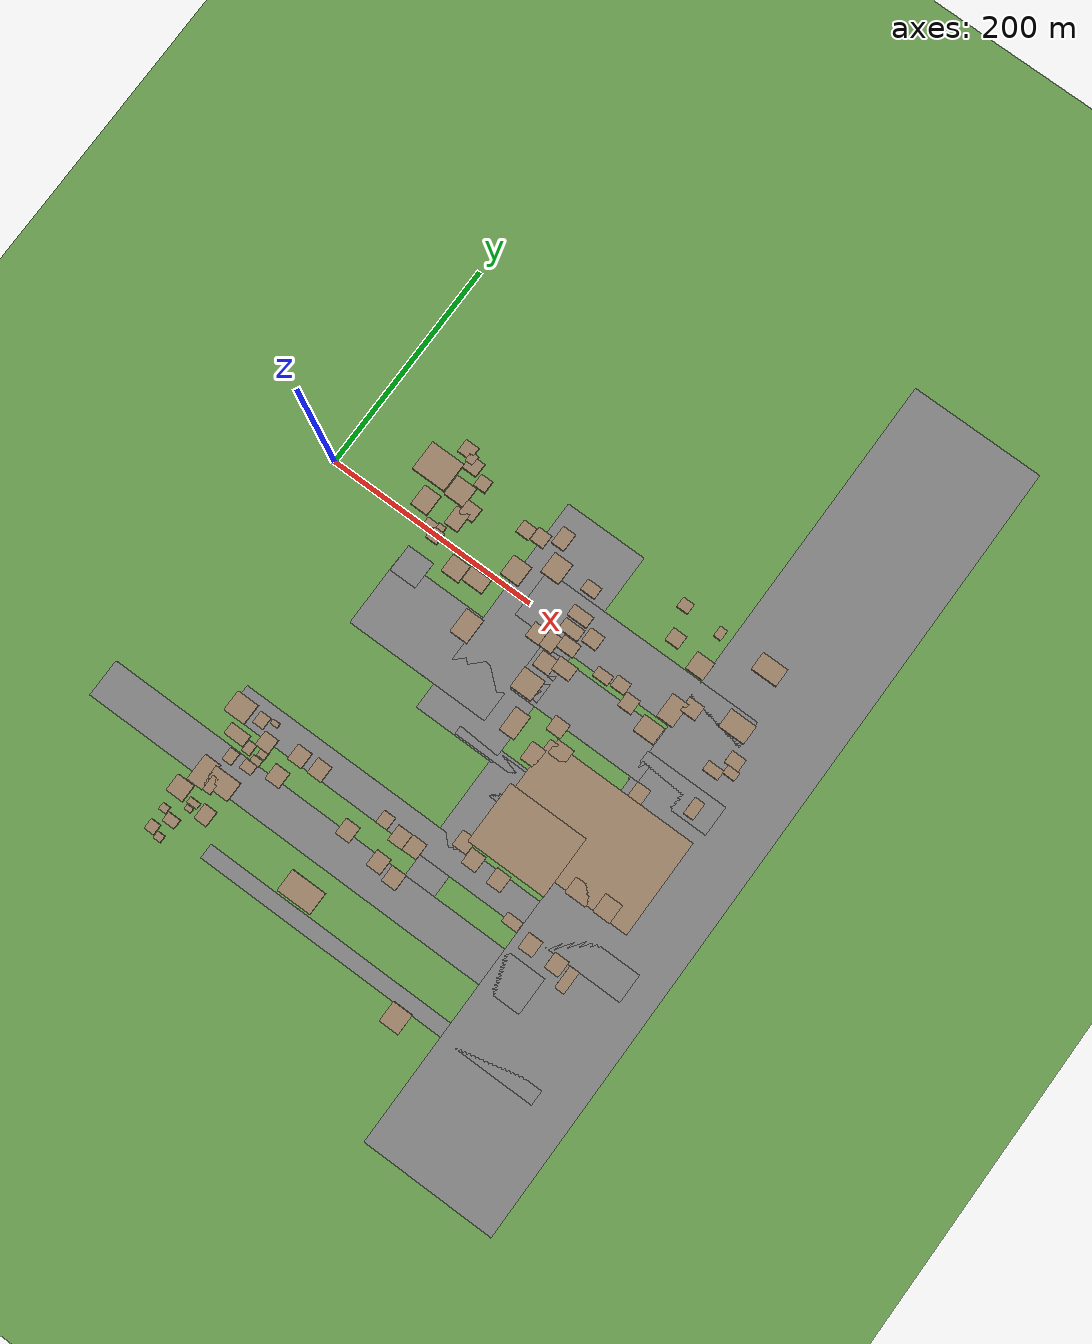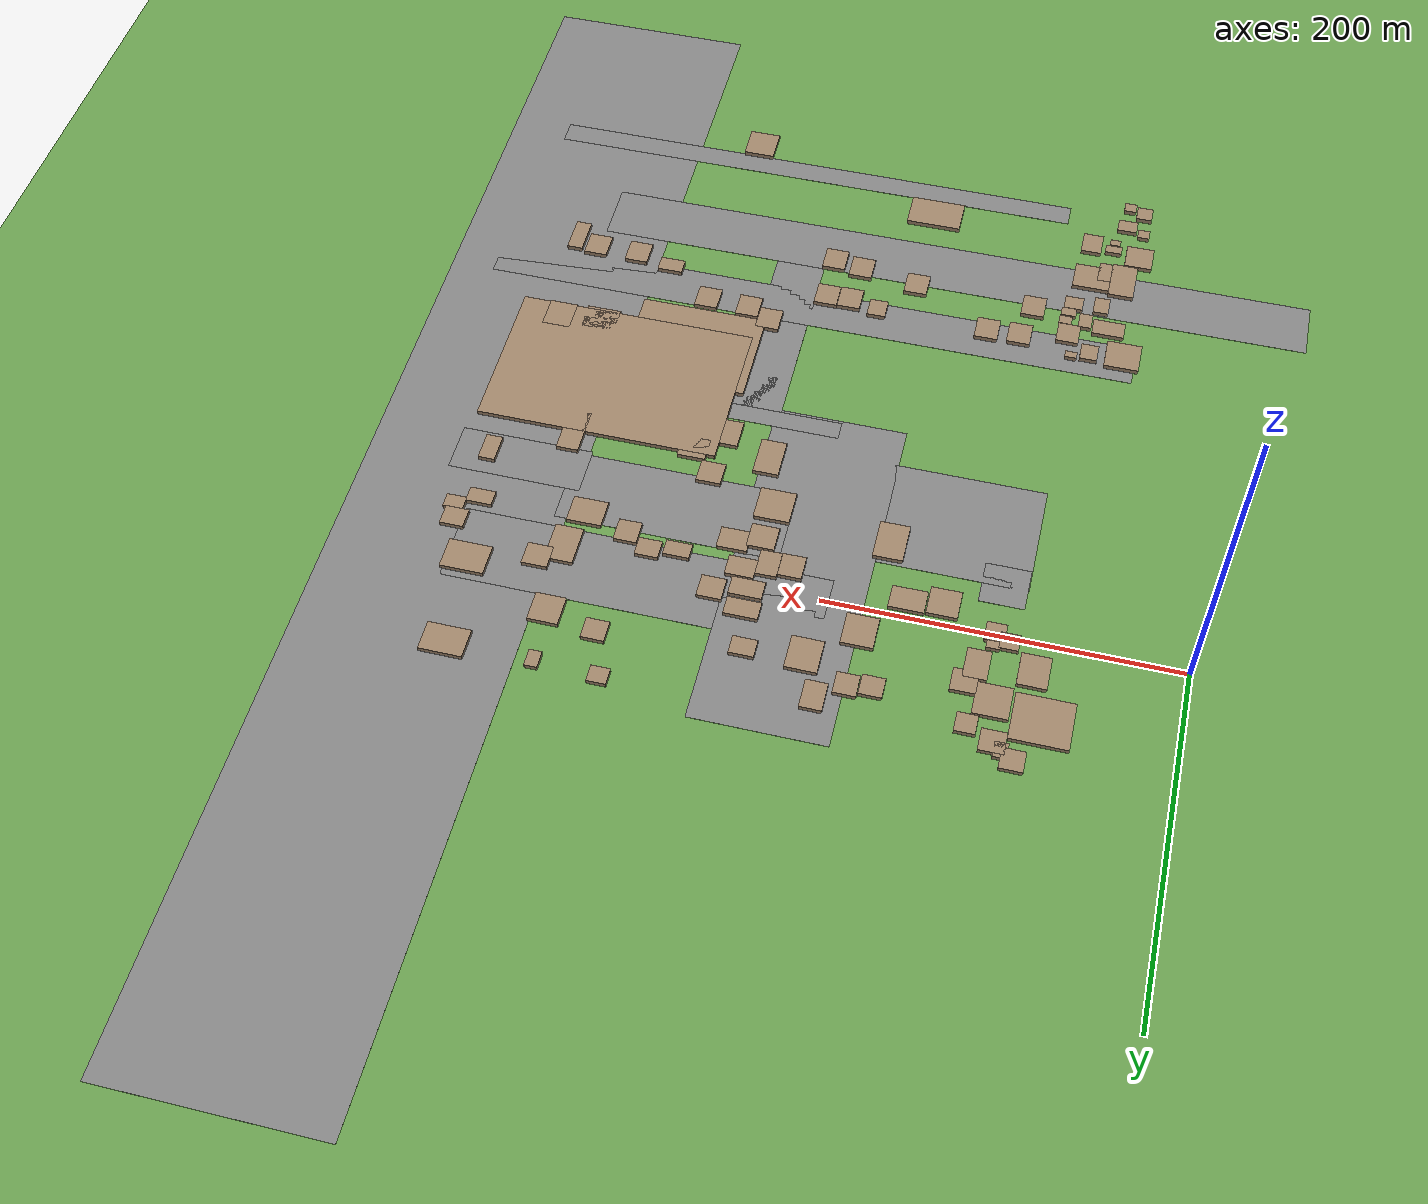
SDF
<sdf version="1.9">
 <world name="kimje_farmland">
  <model name="ground_plane">
   <static>true</static>
   <link name="link">
    <collision name="collision">
     <geometry><plane><normal>0 0 1</normal><size>2000 2000</size></plane></geometry>
    </collision>
    <visual name="visual">
     <geometry><plane><normal>0 0 1</normal><size>2000 2000</size></plane></geometry>
     <material><ambient>0.4 0.6 0.3 1</ambient><diffuse>0.4 0.6 0.3 1</diffuse></material>
    </visual>
   </link>
  </model>
  <model name="osm_10">
   <static>true</static>
   <pose>251.50 -203.29 0.040 0 0 0</pose>
   <link name="link">
    <collision name="collision"><geometry><box><size>393.94 26.91 0.080</size></box></geometry></collision>
    <visual name="visual">
     <geometry><box><size>393.94 26.91 0.080</size></box></geometry>
     <material><ambient>0.5 0.5 0.5 1</ambient><diffuse>0.5 0.5 0.5 1</diffuse></material>
    </visual>
   </link>
  </model>
  <model name="osm_42">
   <static>true</static>
   <pose>214.23 -18.59 0.040 0 0 0</pose>
   <link name="link">
    <collision name="collision"><geometry><box><size>76.90 208.64 0.080</size></box></geometry></collision>
    <visual name="visual">
     <geometry><box><size>76.90 208.64 0.080</size></box></geometry>
     <material><ambient>0.5 0.5 0.5 1</ambient><diffuse>0.5 0.5 0.5 1</diffuse></material>
    </visual>
   </link>
  </model>
  <model name="osm_45">
   <static>true</static>
   <pose>292.19 -43.22 0.040 0 0 0</pose>
   <link name="link">
    <collision name="collision"><geometry><box><size>128.96 45.24 0.080</size></box></geometry></collision>
    <visual name="visual">
     <geometry><box><size>128.96 45.24 0.080</size></box></geometry>
     <material><ambient>0.5 0.5 0.5 1</ambient><diffuse>0.5 0.5 0.5 1</diffuse></material>
    </visual>
   </link>
  </model>
  <model name="osm_47">
   <static>true</static>
   <pose>172.74 -254.29 0.040 0 0 0</pose>
   <link name="link">
    <collision name="collision"><geometry><box><size>433.24 34.90 0.080</size></box></geometry></collision>
    <visual name="visual">
     <geometry><box><size>433.24 34.90 0.080</size></box></geometry>
     <material><ambient>0.5 0.5 0.5 1</ambient><diffuse>0.5 0.5 0.5 1</diffuse></material>
    </visual>
   </link>
  </model>
  <model name="osm_50">
   <static>true</static>
   <pose>300.70 8.19 0.040 0 0 0</pose>
   <link name="link">
    <collision name="collision"><geometry><box><size>211.02 45.11 0.080</size></box></geometry></collision>
    <visual name="visual">
     <geometry><box><size>211.02 45.11 0.080</size></box></geometry>
     <material><ambient>0.5 0.5 0.5 1</ambient><diffuse>0.5 0.5 0.5 1</diffuse></material>
    </visual>
   </link>
  </model>
  <model name="osm_53">
   <static>true</static>
   <pose>274.34 -316.10 0.040 0 0 0</pose>
   <link name="link">
    <collision name="collision"><geometry><box><size>330.12 13.79 0.080</size></box></geometry></collision>
    <visual name="visual">
     <geometry><box><size>330.12 13.79 0.080</size></box></geometry>
     <material><ambient>0.5 0.5 0.5 1</ambient><diffuse>0.5 0.5 0.5 1</diffuse></material>
    </visual>
   </link>
  </model>
  <model name="osm_57">
   <static>true</static>
   <pose>264.60 -189.44 0.040 0 0 0</pose>
   <link name="link">
    <collision name="collision"><geometry><box><size>29.40 152.93 0.080</size></box></geometry></collision>
    <visual name="visual">
     <geometry><box><size>29.40 152.93 0.080</size></box></geometry>
     <material><ambient>0.5 0.5 0.5 1</ambient><diffuse>0.5 0.5 0.5 1</diffuse></material>
    </visual>
   </link>
  </model>
  <model name="osm_60">
   <static>true</static>
   <pose>158.74 -65.54 0.040 0 0 0</pose>
   <link name="link">
    <collision name="collision"><geometry><box><size>136.66 67.44 0.080</size></box></geometry></collision>
    <visual name="visual">
     <geometry><box><size>136.66 67.44 0.080</size></box></geometry>
     <material><ambient>0.5 0.5 0.5 1</ambient><diffuse>0.5 0.5 0.5 1</diffuse></material>
    </visual>
   </link>
  </model>
  <model name="osm_61">
   <static>true</static>
   <pose>266.02 -132.14 0.040 0 0 0</pose>
   <link name="link">
    <collision name="collision"><geometry><box><size>15.99 27.55 0.080</size></box></geometry></collision>
    <visual name="visual">
     <geometry><box><size>15.99 27.55 0.080</size></box></geometry>
     <material><ambient>0.5 0.5 0.5 1</ambient><diffuse>0.5 0.5 0.5 1</diffuse></material>
    </visual>
   </link>
  </model>
  <model name="osm_91">
   <static>true</static>
   <pose>412.07 -44.82 0.040 0 0 0</pose>
   <link name="link">
    <collision name="collision"><geometry><box><size>124.96 758.23 0.080</size></box></geometry></collision>
    <visual name="visual">
     <geometry><box><size>124.96 758.23 0.080</size></box></geometry>
     <material><ambient>0.5 0.5 0.5 1</ambient><diffuse>0.5 0.5 0.5 1</diffuse></material>
    </visual>
   </link>
  </model>
  <model name="osm_105">
   <static>true</static>
   <pose>103.67 -32.48 0.040 0 0 0</pose>
   <link name="link">
    <collision name="collision"><geometry><box><size>25.59 25.34 0.080</size></box></geometry></collision>
    <visual name="visual">
     <geometry><box><size>25.59 25.34 0.080</size></box></geometry>
     <material><ambient>0.5 0.5 0.5 1</ambient><diffuse>0.5 0.5 0.5 1</diffuse></material>
    </visual>
   </link>
  </model>
  <model name="osm_109">
   <static>true</static>
   <pose>387.00 -54.41 0.040 0 0 0</pose>
   <link name="link">
    <collision name="collision"><geometry><box><size>77.46 28.04 0.080</size></box></geometry></collision>
    <visual name="visual">
     <geometry><box><size>77.46 28.04 0.080</size></box></geometry>
     <material><ambient>0.5 0.5 0.5 1</ambient><diffuse>0.5 0.5 0.5 1</diffuse></material>
    </visual>
   </link>
  </model>
  <model name="osm_171">
   <static>true</static>
   <pose>310.52 -115.93 0.040 0 0 0</pose>
   <link name="link">
    <collision name="collision"><geometry><box><size>193.33 11.08 0.080</size></box></geometry></collision>
    <visual name="visual">
     <geometry><box><size>193.33 11.08 0.080</size></box></geometry>
     <material><ambient>0.5 0.5 0.5 1</ambient><diffuse>0.5 0.5 0.5 1</diffuse></material>
    </visual>
   </link>
  </model>
  <model name="osm_172">
   <static>true</static>
   <pose>350.24 -125.06 1.500 0 0 0</pose>
   <link name="link">
    <collision name="collision"><geometry><box><size>142.17 90.84 3.000</size></box></geometry></collision>
    <visual name="visual">
     <geometry><box><size>142.17 90.84 3.000</size></box></geometry>
     <material><ambient>0.6 0.5 0.4 1</ambient><diffuse>0.6 0.5 0.4 1</diffuse></material>
    </visual>
   </link>
  </model>
  <model name="osm_554">
   <static>true</static>
   <pose>82.91 72.96 1.500 0 0 0</pose>
   <link name="link">
    <collision name="collision"><geometry><box><size>13.02 12.17 3.000</size></box></geometry></collision>
    <visual name="visual">
     <geometry><box><size>13.02 12.17 3.000</size></box></geometry>
     <material><ambient>0.6 0.5 0.4 1</ambient><diffuse>0.6 0.5 0.4 1</diffuse></material>
    </visual>
   </link>
  </model>
  <model name="osm_555">
   <static>true</static>
   <pose>89.70 68.73 1.500 0 0 0</pose>
   <link name="link">
    <collision name="collision"><geometry><box><size>7.55 9.03 3.000</size></box></geometry></collision>
    <visual name="visual">
     <geometry><box><size>7.55 9.03 3.000</size></box></geometry>
     <material><ambient>0.6 0.5 0.4 1</ambient><diffuse>0.6 0.5 0.4 1</diffuse></material>
    </visual>
   </link>
  </model>
  <model name="osm_556">
   <static>true</static>
   <pose>94.56 64.64 1.500 0 0 0</pose>
   <link name="link">
    <collision name="collision"><geometry><box><size>13.83 12.95 3.000</size></box></geometry></collision>
    <visual name="visual">
     <geometry><box><size>13.83 12.95 3.000</size></box></geometry>
     <material><ambient>0.6 0.5 0.4 1</ambient><diffuse>0.6 0.5 0.4 1</diffuse></material>
    </visual>
   </link>
  </model>
  <model name="osm_557">
   <static>true</static>
   <pose>109.64 57.32 1.500 0 0 0</pose>
   <link name="link">
    <collision name="collision"><geometry><box><size>11.57 11.40 3.000</size></box></geometry></collision>
    <visual name="visual">
     <geometry><box><size>11.57 11.40 3.000</size></box></geometry>
     <material><ambient>0.6 0.5 0.4 1</ambient><diffuse>0.6 0.5 0.4 1</diffuse></material>
    </visual>
   </link>
  </model>
  <model name="osm_558">
   <static>true</static>
   <pose>98.45 41.10 1.500 0 0 0</pose>
   <link name="link">
    <collision name="collision"><geometry><box><size>19.57 19.19 3.000</size></box></geometry></collision>
    <visual name="visual">
     <geometry><box><size>19.57 19.19 3.000</size></box></geometry>
     <material><ambient>0.6 0.5 0.4 1</ambient><diffuse>0.6 0.5 0.4 1</diffuse></material>
    </visual>
   </link>
  </model>
  <model name="osm_559">
   <static>true</static>
   <pose>80.04 18.48 1.500 0 0 0</pose>
   <link name="link">
    <collision name="collision"><geometry><box><size>16.47 19.61 3.000</size></box></geometry></collision>
    <visual name="visual">
     <geometry><box><size>16.47 19.61 3.000</size></box></geometry>
     <material><ambient>0.6 0.5 0.4 1</ambient><diffuse>0.6 0.5 0.4 1</diffuse></material>
    </visual>
   </link>
  </model>
  <model name="osm_560">
   <static>true</static>
   <pose>95.38 3.55 1.500 0 0 0</pose>
   <link name="link">
    <collision name="collision"><geometry><box><size>10.64 9.94 3.000</size></box></geometry></collision>
    <visual name="visual">
     <geometry><box><size>10.64 9.94 3.000</size></box></geometry>
     <material><ambient>0.6 0.5 0.4 1</ambient><diffuse>0.6 0.5 0.4 1</diffuse></material>
    </visual>
   </link>
  </model>
  <model name="osm_561">
   <static>true</static>
   <pose>103.68 6.79 1.500 0 0 0</pose>
   <link name="link">
    <collision name="collision"><geometry><box><size>7.48 6.07 3.000</size></box></geometry></collision>
    <visual name="visual">
     <geometry><box><size>7.48 6.07 3.000</size></box></geometry>
     <material><ambient>0.6 0.5 0.4 1</ambient><diffuse>0.6 0.5 0.4 1</diffuse></material>
    </visual>
   </link>
  </model>
  <model name="osm_562">
   <static>true</static>
   <pose>103.71 -0.60 1.500 0 0 0</pose>
   <link name="link">
    <collision name="collision"><geometry><box><size>11.23 11.29 3.000</size></box></geometry></collision>
    <visual name="visual">
     <geometry><box><size>11.23 11.29 3.000</size></box></geometry>
     <material><ambient>0.6 0.5 0.4 1</ambient><diffuse>0.6 0.5 0.4 1</diffuse></material>
    </visual>
   </link>
  </model>
  <model name="osm_563">
   <static>true</static>
   <pose>114.88 32.65 1.500 0 0 0</pose>
   <link name="link">
    <collision name="collision"><geometry><box><size>14.10 13.49 3.000</size></box></geometry></collision>
    <visual name="visual">
     <geometry><box><size>14.10 13.49 3.000</size></box></geometry>
     <material><ambient>0.6 0.5 0.4 1</ambient><diffuse>0.6 0.5 0.4 1</diffuse></material>
    </visual>
   </link>
  </model>
  <model name="osm_564">
   <static>true</static>
   <pose>110.10 21.10 1.500 0 0 0</pose>
   <link name="link">
    <collision name="collision"><geometry><box><size>13.29 17.83 3.000</size></box></geometry></collision>
    <visual name="visual">
     <geometry><box><size>13.29 17.83 3.000</size></box></geometry>
     <material><ambient>0.6 0.5 0.4 1</ambient><diffuse>0.6 0.5 0.4 1</diffuse></material>
    </visual>
   </link>
  </model>
  <model name="osm_630">
   <static>true</static>
   <pose>62.04 -207.22 1.500 0 0 0</pose>
   <link name="link">
    <collision name="collision"><geometry><box><size>20.49 19.26 3.000</size></box></geometry></collision>
    <visual name="visual">
     <geometry><box><size>20.49 19.26 3.000</size></box></geometry>
     <material><ambient>0.6 0.5 0.4 1</ambient><diffuse>0.6 0.5 0.4 1</diffuse></material>
    </visual>
   </link>
  </model>
  <model name="osm_631">
   <static>true</static>
   <pose>81.88 -205.47 1.500 0 0 0</pose>
   <link name="link">
    <collision name="collision"><geometry><box><size>10.28 11.25 3.000</size></box></geometry></collision>
    <visual name="visual">
     <geometry><box><size>10.28 11.25 3.000</size></box></geometry>
     <material><ambient>0.6 0.5 0.4 1</ambient><diffuse>0.6 0.5 0.4 1</diffuse></material>
    </visual>
   </link>
  </model>
  <model name="osm_632">
   <static>true</static>
   <pose>92.22 -201.24 1.500 0 0 0</pose>
   <link name="link">
    <collision name="collision"><geometry><box><size>6.98 4.40 3.000</size></box></geometry></collision>
    <visual name="visual">
     <geometry><box><size>6.98 4.40 3.000</size></box></geometry>
     <material><ambient>0.6 0.5 0.4 1</ambient><diffuse>0.6 0.5 0.4 1</diffuse></material>
    </visual>
   </link>
  </model>
  <model name="osm_633">
   <static>true</static>
   <pose>96.12 -217.44 1.500 0 0 0</pose>
   <link name="link">
    <collision name="collision"><geometry><box><size>13.32 13.80 3.000</size></box></geometry></collision>
    <visual name="visual">
     <geometry><box><size>13.32 13.80 3.000</size></box></geometry>
     <material><ambient>0.6 0.5 0.4 1</ambient><diffuse>0.6 0.5 0.4 1</diffuse></material>
    </visual>
   </link>
  </model>
  <model name="osm_634">
   <static>true</static>
   <pose>99.20 -227.47 1.500 0 0 0</pose>
   <link name="link">
    <collision name="collision"><geometry><box><size>7.59 5.93 3.000</size></box></geometry></collision>
    <visual name="visual">
     <geometry><box><size>7.59 5.93 3.000</size></box></geometry>
     <material><ambient>0.6 0.5 0.4 1</ambient><diffuse>0.6 0.5 0.4 1</diffuse></material>
    </visual>
   </link>
  </model>
  <model name="osm_635">
   <static>true</static>
   <pose>98.13 -234.30 1.500 0 0 0</pose>
   <link name="link">
    <collision name="collision"><geometry><box><size>8.97 5.94 3.000</size></box></geometry></collision>
    <visual name="visual">
     <geometry><box><size>8.97 5.94 3.000</size></box></geometry>
     <material><ambient>0.6 0.5 0.4 1</ambient><diffuse>0.6 0.5 0.4 1</diffuse></material>
    </visual>
   </link>
  </model>
  <model name="osm_636">
   <static>true</static>
   <pose>96.12 -242.02 1.500 0 0 0</pose>
   <link name="link">
    <collision name="collision"><geometry><box><size>11.10 9.24 3.000</size></box></geometry></collision>
    <visual name="visual">
     <geometry><box><size>11.10 9.24 3.000</size></box></geometry>
     <material><ambient>0.6 0.5 0.4 1</ambient><diffuse>0.6 0.5 0.4 1</diffuse></material>
    </visual>
   </link>
  </model>
  <model name="osm_637">
   <static>true</static>
   <pose>79.54 -243.58 1.500 0 0 0</pose>
   <link name="link">
    <collision name="collision"><geometry><box><size>9.09 11.72 3.000</size></box></geometry></collision>
    <visual name="visual">
     <geometry><box><size>9.09 11.72 3.000</size></box></geometry>
     <material><ambient>0.6 0.5 0.4 1</ambient><diffuse>0.6 0.5 0.4 1</diffuse></material>
    </visual>
   </link>
  </model>
  <model name="osm_638">
   <static>true</static>
   <pose>87.40 -229.40 1.500 0 0 0</pose>
   <link name="link">
    <collision name="collision"><geometry><box><size>7.84 10.30 3.000</size></box></geometry></collision>
    <visual name="visual">
     <geometry><box><size>7.84 10.30 3.000</size></box></geometry>
     <material><ambient>0.6 0.5 0.4 1</ambient><diffuse>0.6 0.5 0.4 1</diffuse></material>
    </visual>
   </link>
  </model>
  <model name="osm_639">
   <static>true</static>
   <pose>73.06 -226.46 1.500 0 0 0</pose>
   <link name="link">
    <collision name="collision"><geometry><box><size>19.10 10.86 3.000</size></box></geometry></collision>
    <visual name="visual">
     <geometry><box><size>19.10 10.86 3.000</size></box></geometry>
     <material><ambient>0.6 0.5 0.4 1</ambient><diffuse>0.6 0.5 0.4 1</diffuse></material>
    </visual>
   </link>
  </model>
  <model name="osm_667">
   <static>true</static>
   <pose>71.36 47.11 1.500 0 0 0</pose>
   <link name="link">
    <collision name="collision"><geometry><box><size>32.28 28.01 3.000</size></box></geometry></collision>
    <visual name="visual">
     <geometry><box><size>32.28 28.01 3.000</size></box></geometry>
     <material><ambient>0.6 0.5 0.4 1</ambient><diffuse>0.6 0.5 0.4 1</diffuse></material>
    </visual>
   </link>
  </model>
  <model name="osm_791">
   <static>true</static>
   <pose>69.56 -266.56 1.500 0 0 0</pose>
   <link name="link">
    <collision name="collision"><geometry><box><size>15.25 24.85 3.000</size></box></geometry></collision>
    <visual name="visual">
     <geometry><box><size>15.25 24.85 3.000</size></box></geometry>
     <material><ambient>0.6 0.5 0.4 1</ambient><diffuse>0.6 0.5 0.4 1</diffuse></material>
    </visual>
   </link>
  </model>
  <model name="osm_792">
   <static>true</static>
   <pose>86.91 -265.35 1.500 0 0 0</pose>
   <link name="link">
    <collision name="collision"><geometry><box><size>24.87 17.96 3.000</size></box></geometry></collision>
    <visual name="visual">
     <geometry><box><size>24.87 17.96 3.000</size></box></geometry>
     <material><ambient>0.6 0.5 0.4 1</ambient><diffuse>0.6 0.5 0.4 1</diffuse></material>
    </visual>
   </link>
  </model>
  <model name="osm_793">
   <static>true</static>
   <pose>81.11 -271.06 1.500 0 0 0</pose>
   <link name="link">
    <collision name="collision"><geometry><box><size>7.76 14.33 3.000</size></box></geometry></collision>
    <visual name="visual">
     <geometry><box><size>7.76 14.33 3.000</size></box></geometry>
     <material><ambient>0.6 0.5 0.4 1</ambient><diffuse>0.6 0.5 0.4 1</diffuse></material>
    </visual>
   </link>
  </model>
  <model name="osm_794">
   <static>true</static>
   <pose>91.92 -293.39 1.500 0 0 0</pose>
   <link name="link">
    <collision name="collision"><geometry><box><size>12.16 14.47 3.000</size></box></geometry></collision>
    <visual name="visual">
     <geometry><box><size>12.16 14.47 3.000</size></box></geometry>
     <material><ambient>0.6 0.5 0.4 1</ambient><diffuse>0.6 0.5 0.4 1</diffuse></material>
    </visual>
   </link>
  </model>
  <model name="osm_795">
   <static>true</static>
   <pose>78.35 -291.19 1.500 0 0 0</pose>
   <link name="link">
    <collision name="collision"><geometry><box><size>9.95 5.53 3.000</size></box></geometry></collision>
    <visual name="visual">
     <geometry><box><size>9.95 5.53 3.000</size></box></geometry>
     <material><ambient>0.6 0.5 0.4 1</ambient><diffuse>0.6 0.5 0.4 1</diffuse></material>
    </visual>
   </link>
  </model>
  <model name="osm_796">
   <static>true</static>
   <pose>77.96 -297.05 1.500 0 0 0</pose>
   <link name="link">
    <collision name="collision"><geometry><box><size>6.27 4.37 3.000</size></box></geometry></collision>
    <visual name="visual">
     <geometry><box><size>6.27 4.37 3.000</size></box></geometry>
     <material><ambient>0.6 0.5 0.4 1</ambient><diffuse>0.6 0.5 0.4 1</diffuse></material>
    </visual>
   </link>
  </model>
  <model name="osm_797">
   <static>true</static>
   <pose>62.11 -287.90 1.500 0 0 0</pose>
   <link name="link">
    <collision name="collision"><geometry><box><size>16.49 16.20 3.000</size></box></geometry></collision>
    <visual name="visual">
     <geometry><box><size>16.49 16.20 3.000</size></box></geometry>
     <material><ambient>0.6 0.5 0.4 1</ambient><diffuse>0.6 0.5 0.4 1</diffuse></material>
    </visual>
   </link>
  </model>
  <model name="osm_799">
   <static>true</static>
   <pose>61.85 -308.28 1.500 0 0 0</pose>
   <link name="link">
    <collision name="collision"><geometry><box><size>7.02 6.40 3.000</size></box></geometry></collision>
    <visual name="visual">
     <geometry><box><size>7.02 6.40 3.000</size></box></geometry>
     <material><ambient>0.6 0.5 0.4 1</ambient><diffuse>0.6 0.5 0.4 1</diffuse></material>
    </visual>
   </link>
  </model>
  <model name="osm_800">
   <static>true</static>
   <pose>72.32 -312.88 1.500 0 0 0</pose>
   <link name="link">
    <collision name="collision"><geometry><box><size>11.84 8.75 3.000</size></box></geometry></collision>
    <visual name="visual">
     <geometry><box><size>11.84 8.75 3.000</size></box></geometry>
     <material><ambient>0.6 0.5 0.4 1</ambient><diffuse>0.6 0.5 0.4 1</diffuse></material>
    </visual>
   </link>
  </model>
  <model name="osm_801">
   <static>true</static>
   <pose>63.28 -325.83 1.500 0 0 0</pose>
   <link name="link">
    <collision name="collision"><geometry><box><size>9.45 9.67 3.000</size></box></geometry></collision>
    <visual name="visual">
     <geometry><box><size>9.45 9.67 3.000</size></box></geometry>
     <material><ambient>0.6 0.5 0.4 1</ambient><diffuse>0.6 0.5 0.4 1</diffuse></material>
    </visual>
   </link>
  </model>
  <model name="osm_802">
   <static>true</static>
   <pose>72.53 -329.23 1.500 0 0 0</pose>
   <link name="link">
    <collision name="collision"><geometry><box><size>7.24 6.51 3.000</size></box></geometry></collision>
    <visual name="visual">
     <geometry><box><size>7.24 6.51 3.000</size></box></geometry>
     <material><ambient>0.6 0.5 0.4 1</ambient><diffuse>0.6 0.5 0.4 1</diffuse></material>
    </visual>
   </link>
  </model>
  <model name="osm_1295">
   <static>true</static>
   <pose>143.85 -209.99 1.500 0 0 0</pose>
   <link name="link">
    <collision name="collision"><geometry><box><size>13.88 15.01 3.000</size></box></geometry></collision>
    <visual name="visual">
     <geometry><box><size>13.88 15.01 3.000</size></box></geometry>
     <material><ambient>0.6 0.5 0.4 1</ambient><diffuse>0.6 0.5 0.4 1</diffuse></material>
    </visual>
   </link>
  </model>
  <model name="osm_1296">
   <static>true</static>
   <pose>191.58 -235.46 1.500 0 0 0</pose>
   <link name="link">
    <collision name="collision"><geometry><box><size>13.89 15.01 3.000</size></box></geometry></collision>
    <visual name="visual">
     <geometry><box><size>13.89 15.01 3.000</size></box></geometry>
     <material><ambient>0.6 0.5 0.4 1</ambient><diffuse>0.6 0.5 0.4 1</diffuse></material>
    </visual>
   </link>
  </model>
  <model name="osm_1297">
   <static>true</static>
   <pose>124.37 -210.63 1.500 0 0 0</pose>
   <link name="link">
    <collision name="collision"><geometry><box><size>13.89 15.01 3.000</size></box></geometry></collision>
    <visual name="visual">
     <geometry><box><size>13.89 15.01 3.000</size></box></geometry>
     <material><ambient>0.6 0.5 0.4 1</ambient><diffuse>0.6 0.5 0.4 1</diffuse></material>
    </visual>
   </link>
  </model>
  <model name="osm_1298">
   <static>true</static>
   <pose>119.45 -233.97 1.500 0 0 0</pose>
   <link name="link">
    <collision name="collision"><geometry><box><size>13.88 15.01 3.000</size></box></geometry></collision>
    <visual name="visual">
     <geometry><box><size>13.88 15.01 3.000</size></box></geometry>
     <material><ambient>0.6 0.5 0.4 1</ambient><diffuse>0.6 0.5 0.4 1</diffuse></material>
    </visual>
   </link>
  </model>
  <model name="osm_1299">
   <static>true</static>
   <pose>228.82 -214.91 1.500 0 0 0</pose>
   <link name="link">
    <collision name="collision"><geometry><box><size>13.89 15.01 3.000</size></box></geometry></collision>
    <visual name="visual">
     <geometry><box><size>13.89 15.01 3.000</size></box></geometry>
     <material><ambient>0.6 0.5 0.4 1</ambient><diffuse>0.6 0.5 0.4 1</diffuse></material>
    </visual>
   </link>
  </model>
  <model name="osm_1300">
   <static>true</static>
   <pose>226.90 -241.03 1.500 0 0 0</pose>
   <link name="link">
    <collision name="collision"><geometry><box><size>13.89 15.01 3.000</size></box></geometry></collision>
    <visual name="visual">
     <geometry><box><size>13.89 15.01 3.000</size></box></geometry>
     <material><ambient>0.6 0.5 0.4 1</ambient><diffuse>0.6 0.5 0.4 1</diffuse></material>
    </visual>
   </link>
  </model>
  <model name="osm_1301">
   <static>true</static>
   <pose>244.23 -244.02 1.500 0 0 0</pose>
   <link name="link">
    <collision name="collision"><geometry><box><size>13.89 15.01 3.000</size></box></geometry></collision>
    <visual name="visual">
     <geometry><box><size>13.89 15.01 3.000</size></box></geometry>
     <material><ambient>0.6 0.5 0.4 1</ambient><diffuse>0.6 0.5 0.4 1</diffuse></material>
    </visual>
   </link>
  </model>
  <model name="osm_1302">
   <static>true</static>
   <pose>242.95 -214.49 1.500 0 0 0</pose>
   <link name="link">
    <collision name="collision"><geometry><box><size>13.89 15.02 3.000</size></box></geometry></collision>
    <visual name="visual">
     <geometry><box><size>13.89 15.02 3.000</size></box></geometry>
     <material><ambient>0.6 0.5 0.4 1</ambient><diffuse>0.6 0.5 0.4 1</diffuse></material>
    </visual>
   </link>
  </model>
  <model name="osm_1303">
   <static>true</static>
   <pose>287.26 -194.58 1.500 0 0 0</pose>
   <link name="link">
    <collision name="collision"><geometry><box><size>13.88 15.01 3.000</size></box></geometry></collision>
    <visual name="visual">
     <geometry><box><size>13.88 15.01 3.000</size></box></geometry>
     <material><ambient>0.6 0.5 0.4 1</ambient><diffuse>0.6 0.5 0.4 1</diffuse></material>
    </visual>
   </link>
  </model>
  <model name="osm_1304">
   <static>true</static>
   <pose>272.92 -187.52 1.500 0 0 0</pose>
   <link name="link">
    <collision name="collision"><geometry><box><size>13.89 15.01 3.000</size></box></geometry></collision>
    <visual name="visual">
     <geometry><box><size>13.89 15.01 3.000</size></box></geometry>
     <material><ambient>0.6 0.5 0.4 1</ambient><diffuse>0.6 0.5 0.4 1</diffuse></material>
    </visual>
   </link>
  </model>
  <model name="osm_1305">
   <static>true</static>
   <pose>312.94 -195.65 1.500 0 0 0</pose>
   <link name="link">
    <collision name="collision"><geometry><box><size>13.88 15.02 3.000</size></box></geometry></collision>
    <visual name="visual">
     <geometry><box><size>13.88 15.02 3.000</size></box></geometry>
     <material><ambient>0.6 0.5 0.4 1</ambient><diffuse>0.6 0.5 0.4 1</diffuse></material>
    </visual>
   </link>
  </model>
  <model name="osm_1306">
   <static>true</static>
   <pose>364.10 -221.98 1.500 0 0 0</pose>
   <link name="link">
    <collision name="collision"><geometry><box><size>13.88 15.02 3.000</size></box></geometry></collision>
    <visual name="visual">
     <geometry><box><size>13.88 15.02 3.000</size></box></geometry>
     <material><ambient>0.6 0.5 0.4 1</ambient><diffuse>0.6 0.5 0.4 1</diffuse></material>
    </visual>
   </link>
  </model>
  <model name="osm_1307">
   <static>true</static>
   <pose>390.21 -222.19 1.500 0 0 0</pose>
   <link name="link">
    <collision name="collision"><geometry><box><size>13.89 15.01 3.000</size></box></geometry></collision>
    <visual name="visual">
     <geometry><box><size>13.89 15.01 3.000</size></box></geometry>
     <material><ambient>0.6 0.5 0.4 1</ambient><diffuse>0.6 0.5 0.4 1</diffuse></material>
    </visual>
   </link>
  </model>
  <model name="osm_1320">
   <static>true</static>
   <pose>403.98 -227.13 1.500 0 0 0</pose>
   <link name="link">
    <collision name="collision"><geometry><box><size>9.27 21.11 3.000</size></box></geometry></collision>
    <visual name="visual">
     <geometry><box><size>9.27 21.11 3.000</size></box></geometry>
     <material><ambient>0.6 0.5 0.4 1</ambient><diffuse>0.6 0.5 0.4 1</diffuse></material>
    </visual>
   </link>
  </model>
  <model name="osm_1343">
   <static>true</static>
   <pose>303.05 73.44 1.500 0 0 0</pose>
   <link name="link">
    <collision name="collision"><geometry><box><size>10.85 9.66 3.000</size></box></geometry></collision>
    <visual name="visual">
     <geometry><box><size>10.85 9.66 3.000</size></box></geometry>
     <material><ambient>0.6 0.5 0.4 1</ambient><diffuse>0.6 0.5 0.4 1</diffuse></material>
    </visual>
   </link>
  </model>
  <model name="osm_1798">
   <static>true</static>
   <pose>174.56 15.05 1.500 0 0 0</pose>
   <link name="link">
    <collision name="collision"><geometry><box><size>18.08 19.12 3.000</size></box></geometry></collision>
    <visual name="visual">
     <geometry><box><size>18.08 19.12 3.000</size></box></geometry>
     <material><ambient>0.6 0.5 0.4 1</ambient><diffuse>0.6 0.5 0.4 1</diffuse></material>
    </visual>
   </link>
  </model>
  <model name="osm_1799">
   <static>true</static>
   <pose>233.06 39.05 1.500 0 0 0</pose>
   <link name="link">
    <collision name="collision"><geometry><box><size>14.05 10.65 3.000</size></box></geometry></collision>
    <visual name="visual">
     <geometry><box><size>14.05 10.65 3.000</size></box></geometry>
     <material><ambient>0.6 0.5 0.4 1</ambient><diffuse>0.6 0.5 0.4 1</diffuse></material>
    </visual>
   </link>
  </model>
  <model name="osm_1800">
   <static>true</static>
   <pose>239.24 15.79 1.500 0 0 0</pose>
   <link name="link">
    <collision name="collision"><geometry><box><size>19.33 10.71 3.000</size></box></geometry></collision>
    <visual name="visual">
     <geometry><box><size>19.33 10.71 3.000</size></box></geometry>
     <material><ambient>0.6 0.5 0.4 1</ambient><diffuse>0.6 0.5 0.4 1</diffuse></material>
    </visual>
   </link>
  </model>
  <model name="osm_1801">
   <static>true</static>
   <pose>239.98 2.66 1.500 0 0 0</pose>
   <link name="link">
    <collision name="collision"><geometry><box><size>18.85 11.02 3.000</size></box></geometry></collision>
    <visual name="visual">
     <geometry><box><size>18.85 11.02 3.000</size></box></geometry>
     <material><ambient>0.6 0.5 0.4 1</ambient><diffuse>0.6 0.5 0.4 1</diffuse></material>
    </visual>
   </link>
  </model>
  <model name="osm_1802">
   <static>true</static>
   <pose>258.76 6.66 1.500 0 0 0</pose>
   <link name="link">
    <collision name="collision"><geometry><box><size>14.07 13.41 3.000</size></box></geometry></collision>
    <visual name="visual">
     <geometry><box><size>14.07 13.41 3.000</size></box></geometry>
     <material><ambient>0.6 0.5 0.4 1</ambient><diffuse>0.6 0.5 0.4 1</diffuse></material>
    </visual>
   </link>
  </model>
  <model name="osm_1803">
   <static>true</static>
   <pose>299.06 -10.40 1.500 0 0 0</pose>
   <link name="link">
    <collision name="collision"><geometry><box><size>13.40 11.01 3.000</size></box></geometry></collision>
    <visual name="visual">
     <geometry><box><size>13.40 11.01 3.000</size></box></geometry>
     <material><ambient>0.6 0.5 0.4 1</ambient><diffuse>0.6 0.5 0.4 1</diffuse></material>
    </visual>
   </link>
  </model>
  <model name="osm_1804">
   <static>true</static>
   <pose>232.10 -15.50 1.500 0 0 0</pose>
   <link name="link">
    <collision name="collision"><geometry><box><size>12.13 15.82 3.000</size></box></geometry></collision>
    <visual name="visual">
     <geometry><box><size>12.13 15.82 3.000</size></box></geometry>
     <material><ambient>0.6 0.5 0.4 1</ambient><diffuse>0.6 0.5 0.4 1</diffuse></material>
    </visual>
   </link>
  </model>
  <model name="osm_1805">
   <static>true</static>
   <pose>341.76 40.24 1.500 0 0 0</pose>
   <link name="link">
    <collision name="collision"><geometry><box><size>17.24 17.10 3.000</size></box></geometry></collision>
    <visual name="visual">
     <geometry><box><size>17.24 17.10 3.000</size></box></geometry>
     <material><ambient>0.6 0.5 0.4 1</ambient><diffuse>0.6 0.5 0.4 1</diffuse></material>
    </visual>
   </link>
  </model>
  <model name="osm_1806">
   <static>true</static>
   <pose>388.83 71.29 1.500 0 0 0</pose>
   <link name="link">
    <collision name="collision"><geometry><box><size>24.70 16.94 3.000</size></box></geometry></collision>
    <visual name="visual">
     <geometry><box><size>24.70 16.94 3.000</size></box></geometry>
     <material><ambient>0.6 0.5 0.4 1</ambient><diffuse>0.6 0.5 0.4 1</diffuse></material>
    </visual>
   </link>
  </model>
  <model name="osm_1809">
   <static>true</static>
   <pose>409.96 -5.92 1.500 0 0 0</pose>
   <link name="link">
    <collision name="collision"><geometry><box><size>13.60 11.60 3.000</size></box></geometry></collision>
    <visual name="visual">
     <geometry><box><size>13.60 11.60 3.000</size></box></geometry>
     <material><ambient>0.6 0.5 0.4 1</ambient><diffuse>0.6 0.5 0.4 1</diffuse></material>
    </visual>
   </link>
  </model>
  <model name="osm_1810">
   <static>true</static>
   <pose>399.98 -22.44 1.500 0 0 0</pose>
   <link name="link">
    <collision name="collision"><geometry><box><size>14.90 9.21 3.000</size></box></geometry></collision>
    <visual name="visual">
     <geometry><box><size>14.90 9.21 3.000</size></box></geometry>
     <material><ambient>0.6 0.5 0.4 1</ambient><diffuse>0.6 0.5 0.4 1</diffuse></material>
    </visual>
   </link>
  </model>
  <model name="osm_1811">
   <static>true</static>
   <pose>412.99 -15.54 1.500 0 0 0</pose>
   <link name="link">
    <collision name="collision"><geometry><box><size>11.63 8.24 3.000</size></box></geometry></collision>
    <visual name="visual">
     <geometry><box><size>11.63 8.24 3.000</size></box></geometry>
     <material><ambient>0.6 0.5 0.4 1</ambient><diffuse>0.6 0.5 0.4 1</diffuse></material>
    </visual>
   </link>
  </model>
  <model name="osm_1821">
   <static>true</static>
   <pose>312.03 -331.55 1.500 0 0 0</pose>
   <link name="link">
    <collision name="collision"><geometry><box><size>18.73 19.09 3.000</size></box></geometry></collision>
    <visual name="visual">
     <geometry><box><size>18.73 19.09 3.000</size></box></geometry>
     <material><ambient>0.6 0.5 0.4 1</ambient><diffuse>0.6 0.5 0.4 1</diffuse></material>
    </visual>
   </link>
  </model>
  <model name="osm_1822">
   <static>true</static>
   <pose>191.19 -296.67 1.500 0 0 0</pose>
   <link name="link">
    <collision name="collision"><geometry><box><size>33.04 20.74 3.000</size></box></geometry></collision>
    <visual name="visual">
     <geometry><box><size>33.04 20.74 3.000</size></box></geometry>
     <material><ambient>0.6 0.5 0.4 1</ambient><diffuse>0.6 0.5 0.4 1</diffuse></material>
    </visual>
   </link>
  </model>
  <model name="osm_1825">
   <static>true</static>
   <pose>292.31 -83.04 1.500 0 0 0</pose>
   <link name="link">
    <collision name="collision"><geometry><box><size>16.23 13.90 3.000</size></box></geometry></collision>
    <visual name="visual">
     <geometry><box><size>16.23 13.90 3.000</size></box></geometry>
     <material><ambient>0.6 0.5 0.4 1</ambient><diffuse>0.6 0.5 0.4 1</diffuse></material>
    </visual>
   </link>
  </model>
  <model name="osm_1826">
   <static>true</static>
   <pose>237.71 -54.43 1.500 0 0 0</pose>
   <link name="link">
    <collision name="collision"><geometry><box><size>20.66 20.03 3.000</size></box></geometry></collision>
    <visual name="visual">
     <geometry><box><size>20.66 20.03 3.000</size></box></geometry>
     <material><ambient>0.6 0.5 0.4 1</ambient><diffuse>0.6 0.5 0.4 1</diffuse></material>
    </visual>
   </link>
  </model>
  <model name="osm_1827">
   <static>true</static>
   <pose>248.34 -86.32 1.500 0 0 0</pose>
   <link name="link">
    <collision name="collision"><geometry><box><size>14.76 22.98 3.000</size></box></geometry></collision>
    <visual name="visual">
     <geometry><box><size>14.76 22.98 3.000</size></box></geometry>
     <material><ambient>0.6 0.5 0.4 1</ambient><diffuse>0.6 0.5 0.4 1</diffuse></material>
    </visual>
   </link>
  </model>
  <model name="osm_1829">
   <static>true</static>
   <pose>405.62 -56.55 1.500 0 0 0</pose>
   <link name="link">
    <collision name="collision"><geometry><box><size>9.58 16.30 3.000</size></box></geometry></collision>
    <visual name="visual">
     <geometry><box><size>9.58 16.30 3.000</size></box></geometry>
     <material><ambient>0.6 0.5 0.4 1</ambient><diffuse>0.6 0.5 0.4 1</diffuse></material>
    </visual>
   </link>
  </model>
  <model name="osm_1831">
   <static>true</static>
   <pose>169.47 -45.47 1.500 0 0 0</pose>
   <link name="link">
    <collision name="collision"><geometry><box><size>17.09 23.33 3.000</size></box></geometry></collision>
    <visual name="visual">
     <geometry><box><size>17.09 23.33 3.000</size></box></geometry>
     <material><ambient>0.6 0.5 0.4 1</ambient><diffuse>0.6 0.5 0.4 1</diffuse></material>
    </visual>
   </link>
  </model>
  <model name="osm_1832">
   <static>true</static>
   <pose>211.14 -210.74 1.500 0 0 0</pose>
   <link name="link">
    <collision name="collision"><geometry><box><size>11.02 11.98 3.000</size></box></geometry></collision>
    <visual name="visual">
     <geometry><box><size>11.02 11.98 3.000</size></box></geometry>
     <material><ambient>0.6 0.5 0.4 1</ambient><diffuse>0.6 0.5 0.4 1</diffuse></material>
    </visual>
   </link>
  </model>
  <model name="osm_1833">
   <static>true</static>
   <pose>341.59 -216.07 1.500 0 0 0</pose>
   <link name="link">
    <collision name="collision"><geometry><box><size>15.05 9.36 3.000</size></box></geometry></collision>
    <visual name="visual">
     <geometry><box><size>15.05 9.36 3.000</size></box></geometry>
     <material><ambient>0.6 0.5 0.4 1</ambient><diffuse>0.6 0.5 0.4 1</diffuse></material>
    </visual>
   </link>
  </model>
  <model name="osm_1834">
   <static>true</static>
   <pose>371.50 -164.40 1.500 0 0 0</pose>
   <link name="link">
    <collision name="collision"><geometry><box><size>20.34 15.51 3.000</size></box></geometry></collision>
    <visual name="visual">
     <geometry><box><size>20.34 15.51 3.000</size></box></geometry>
     <material><ambient>0.6 0.5 0.4 1</ambient><diffuse>0.6 0.5 0.4 1</diffuse></material>
    </visual>
   </link>
  </model>
  <model name="osm_1839">
   <static>true</static>
   <pose>338.69 -26.29 1.500 0 0 0</pose>
   <link name="link">
    <collision name="collision"><geometry><box><size>20.03 16.13 3.000</size></box></geometry></collision>
    <visual name="visual">
     <geometry><box><size>20.03 16.13 3.000</size></box></geometry>
     <material><ambient>0.6 0.5 0.4 1</ambient><diffuse>0.6 0.5 0.4 1</diffuse></material>
    </visual>
   </link>
  </model>
  <model name="osm_1840">
   <static>true</static>
   <pose>313.13 -18.54 1.500 0 0 0</pose>
   <link name="link">
    <collision name="collision"><geometry><box><size>13.28 13.49 3.000</size></box></geometry></collision>
    <visual name="visual">
     <geometry><box><size>13.28 13.49 3.000</size></box></geometry>
     <material><ambient>0.6 0.5 0.4 1</ambient><diffuse>0.6 0.5 0.4 1</diffuse></material>
    </visual>
   </link>
  </model>
  <model name="osm_1841">
   <static>true</static>
   <pose>283.06 -13.10 1.500 0 0 0</pose>
   <link name="link">
    <collision name="collision"><geometry><box><size>15.01 9.21 3.000</size></box></geometry></collision>
    <visual name="visual">
     <geometry><box><size>15.01 9.21 3.000</size></box></geometry>
     <material><ambient>0.6 0.5 0.4 1</ambient><diffuse>0.6 0.5 0.4 1</diffuse></material>
    </visual>
   </link>
  </model>
  <model name="osm_1842">
   <static>true</static>
   <pose>239.21 -31.93 1.500 0 0 0</pose>
   <link name="link">
    <collision name="collision"><geometry><box><size>15.78 14.86 3.000</size></box></geometry></collision>
    <visual name="visual">
     <geometry><box><size>15.78 14.86 3.000</size></box></geometry>
     <material><ambient>0.6 0.5 0.4 1</ambient><diffuse>0.6 0.5 0.4 1</diffuse></material>
    </visual>
   </link>
  </model>
  <model name="osm_1843">
   <static>true</static>
   <pose>174.84 48.96 1.500 0 0 0</pose>
   <link name="link">
    <collision name="collision"><geometry><box><size>12.86 12.86 3.000</size></box></geometry></collision>
    <visual name="visual">
     <geometry><box><size>12.86 12.86 3.000</size></box></geometry>
     <material><ambient>0.6 0.5 0.4 1</ambient><diffuse>0.6 0.5 0.4 1</diffuse></material>
    </visual>
   </link>
  </model>
  <model name="osm_1844">
   <static>true</static>
   <pose>190.13 59.32 1.500 0 0 0</pose>
   <link name="link">
    <collision name="collision"><geometry><box><size>12.46 16.78 3.000</size></box></geometry></collision>
    <visual name="visual">
     <geometry><box><size>12.46 16.78 3.000</size></box></geometry>
     <material><ambient>0.6 0.5 0.4 1</ambient><diffuse>0.6 0.5 0.4 1</diffuse></material>
    </visual>
   </link>
  </model>
  <model name="osm_1845">
   <static>true</static>
   <pose>200.31 36.24 1.500 0 0 0</pose>
   <link name="link">
    <collision name="collision"><geometry><box><size>18.13 19.81 3.000</size></box></geometry></collision>
    <visual name="visual">
     <geometry><box><size>18.13 19.81 3.000</size></box></geometry>
     <material><ambient>0.6 0.5 0.4 1</ambient><diffuse>0.6 0.5 0.4 1</diffuse></material>
    </visual>
   </link>
  </model>
  <model name="osm_1846">
   <static>true</static>
   <pose>161.43 47.04 1.500 0 0 0</pose>
   <link name="link">
    <collision name="collision"><geometry><box><size>12.85 11.92 3.000</size></box></geometry></collision>
    <visual name="visual">
     <geometry><box><size>12.85 11.92 3.000</size></box></geometry>
     <material><ambient>0.6 0.5 0.4 1</ambient><diffuse>0.6 0.5 0.4 1</diffuse></material>
    </visual>
   </link>
  </model>
  <model name="osm_1852">
   <static>true</static>
   <pose>396.61 -162.23 1.500 0 0 0</pose>
   <link name="link">
    <collision name="collision"><geometry><box><size>16.71 17.92 3.000</size></box></geometry></collision>
    <visual name="visual">
     <geometry><box><size>16.71 17.92 3.000</size></box></geometry>
     <material><ambient>0.6 0.5 0.4 1</ambient><diffuse>0.6 0.5 0.4 1</diffuse></material>
    </visual>
   </link>
  </model>
  <model name="osm_1853">
   <static>true</static>
   <pose>312.20 -156.36 1.500 0 0 0</pose>
   <link name="link">
    <collision name="collision"><geometry><box><size>75.72 57.83 3.000</size></box></geometry></collision>
    <visual name="visual">
     <geometry><box><size>75.72 57.83 3.000</size></box></geometry>
     <material><ambient>0.6 0.5 0.4 1</ambient><diffuse>0.6 0.5 0.4 1</diffuse></material>
    </visual>
   </link>
  </model>
  <model name="osm_1855">
   <static>true</static>
   <pose>362.83 -79.33 1.500 0 0 0</pose>
   <link name="link">
    <collision name="collision"><geometry><box><size>12.94 27.32 3.000</size></box></geometry></collision>
    <visual name="visual">
     <geometry><box><size>12.94 27.32 3.000</size></box></geometry>
     <material><ambient>0.6 0.5 0.4 1</ambient><diffuse>0.6 0.5 0.4 1</diffuse></material>
    </visual>
   </link>
  </model>
  <model name="osm_1860">
   <static>true</static>
   <pose>339.43 71.80 1.500 0 0 0</pose>
   <link name="link">
    <collision name="collision"><geometry><box><size>7.27 9.91 3.000</size></box></geometry></collision>
    <visual name="visual">
     <geometry><box><size>7.27 9.91 3.000</size></box></geometry>
     <material><ambient>0.6 0.5 0.4 1</ambient><diffuse>0.6 0.5 0.4 1</diffuse></material>
    </visual>
   </link>
  </model>
  <model name="osm_1861">
   <static>true</static>
   <pose>312.62 47.01 1.500 0 0 0</pose>
   <link name="link">
    <collision name="collision"><geometry><box><size>13.21 12.38 3.000</size></box></geometry></collision>
    <visual name="visual">
     <geometry><box><size>13.21 12.38 3.000</size></box></geometry>
     <material><ambient>0.6 0.5 0.4 1</ambient><diffuse>0.6 0.5 0.4 1</diffuse></material>
    </visual>
   </link>
  </model>
  <model name="osm_1862">
   <static>true</static>
   <pose>254.45 -26.70 1.500 0 0 0</pose>
   <link name="link">
    <collision name="collision"><geometry><box><size>17.26 13.10 3.000</size></box></geometry></collision>
    <visual name="visual">
     <geometry><box><size>17.26 13.10 3.000</size></box></geometry>
     <material><ambient>0.6 0.5 0.4 1</ambient><diffuse>0.6 0.5 0.4 1</diffuse></material>
    </visual>
   </link>
  </model>
  <model name="osm_1863">
   <static>true</static>
   <pose>246.21 -9.92 1.500 0 0 0</pose>
   <link name="link">
    <collision name="collision"><geometry><box><size>16.30 12.15 3.000</size></box></geometry></collision>
    <visual name="visual">
     <geometry><box><size>16.30 12.15 3.000</size></box></geometry>
     <material><ambient>0.6 0.5 0.4 1</ambient><diffuse>0.6 0.5 0.4 1</diffuse></material>
    </visual>
   </link>
  </model>
  <model name="osm_1864">
   <static>true</static>
   <pose>153.29 -10.26 1.500 0 0 0</pose>
   <link name="link">
    <collision name="collision"><geometry><box><size>20.01 13.76 3.000</size></box></geometry></collision>
    <visual name="visual">
     <geometry><box><size>20.01 13.76 3.000</size></box></geometry>
     <material><ambient>0.6 0.5 0.4 1</ambient><diffuse>0.6 0.5 0.4 1</diffuse></material>
    </visual>
   </link>
  </model>
  <model name="osm_1865">
   <static>true</static>
   <pose>133.86 -12.63 1.500 0 0 0</pose>
   <link name="link">
    <collision name="collision"><geometry><box><size>17.39 16.97 3.000</size></box></geometry></collision>
    <visual name="visual">
     <geometry><box><size>17.39 16.97 3.000</size></box></geometry>
     <material><ambient>0.6 0.5 0.4 1</ambient><diffuse>0.6 0.5 0.4 1</diffuse></material>
    </visual>
   </link>
  </model>
  <model name="osm_1866">
   <static>true</static>
   <pose>275.31 -98.12 1.500 0 0 0</pose>
   <link name="link">
    <collision name="collision"><geometry><box><size>13.71 17.29 3.000</size></box></geometry></collision>
    <visual name="visual">
     <geometry><box><size>13.71 17.29 3.000</size></box></geometry>
     <material><ambient>0.6 0.5 0.4 1</ambient><diffuse>0.6 0.5 0.4 1</diffuse></material>
    </visual>
   </link>
  </model>
  <model name="osm_1867">
   <static>true</static>
   <pose>278.39 -68.24 1.500 0 0 0</pose>
   <link name="link">
    <collision name="collision"><geometry><box><size>14.34 13.91 3.000</size></box></geometry></collision>
    <visual name="visual">
     <geometry><box><size>14.34 13.91 3.000</size></box></geometry>
     <material><ambient>0.6 0.5 0.4 1</ambient><diffuse>0.6 0.5 0.4 1</diffuse></material>
    </visual>
   </link>
  </model>
  <model name="osm_1871">
   <static>true</static>
   <pose>394.93 18.06 1.500 0 0 0</pose>
   <link name="link">
    <collision name="collision"><geometry><box><size>24.92 17.91 3.000</size></box></geometry></collision>
    <visual name="visual">
     <geometry><box><size>24.92 17.91 3.000</size></box></geometry>
     <material><ambient>0.6 0.5 0.4 1</ambient><diffuse>0.6 0.5 0.4 1</diffuse></material>
    </visual>
   </link>
  </model>
  <model name="osm_1872">
   <static>true</static>
   <pose>345.07 -2.39 1.500 0 0 0</pose>
   <link name="link">
    <collision name="collision"><geometry><box><size>16.14 22.85 3.000</size></box></geometry></collision>
    <visual name="visual">
     <geometry><box><size>16.14 22.85 3.000</size></box></geometry>
     <material><ambient>0.6 0.5 0.4 1</ambient><diffuse>0.6 0.5 0.4 1</diffuse></material>
    </visual>
   </link>
  </model>
  <model name="osm_1873">
   <static>true</static>
   <pose>357.09 8.19 1.500 0 0 0</pose>
   <link name="link">
    <collision name="collision"><geometry><box><size>14.68 13.58 3.000</size></box></geometry></collision>
    <visual name="visual">
     <geometry><box><size>14.68 13.58 3.000</size></box></geometry>
     <material><ambient>0.6 0.5 0.4 1</ambient><diffuse>0.6 0.5 0.4 1</diffuse></material>
    </visual>
   </link>
  </model>
  <model name="osm_1874">
   <static>true</static>
   <pose>219.24 -16.64 1.500 0 0 0</pose>
   <link name="link">
    <collision name="collision"><geometry><box><size>13.43 14.22 3.000</size></box></geometry></collision>
    <visual name="visual">
     <geometry><box><size>13.43 14.22 3.000</size></box></geometry>
     <material><ambient>0.6 0.5 0.4 1</ambient><diffuse>0.6 0.5 0.4 1</diffuse></material>
    </visual>
   </link>
  </model>
 </world>
</sdf>
